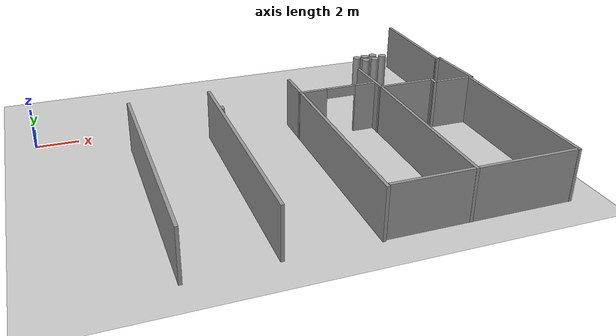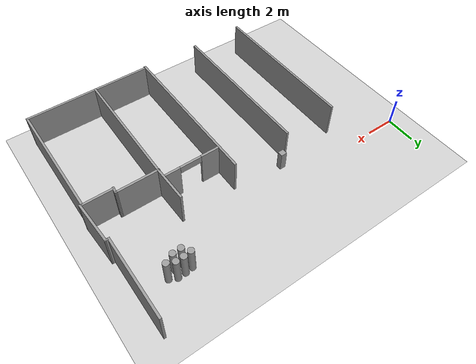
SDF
<sdf version="1.6">
 <world name="default">
  <model name="ground_plane">
   <static>1</static>
   <link name="link">
    <collision name="collision">
     <geometry><plane><normal>0 0 1</normal><size>100 100</size></plane></geometry>
     <surface>
      <contact><collide_bitmask>65535</collide_bitmask></contact>
      <friction><ode><mu>100</mu><mu2>50</mu2></ode></friction>
     </surface>
    </collision>
    <visual name="visual">
     <cast_shadows>0</cast_shadows>
     <geometry><plane><normal>0 0 1</normal><size>100 100</size></plane></geometry>
     <material>
      <script><uri>file://media/materials/scripts/gazebo.material</uri><name>Gazebo/Grey</name></script>
     </material>
    </visual>
   </link>
  </model>
  <model name="six_floor">
   <link name="Wall_100">
    <pose>14.7874 -4.51634 0 0 0 -1.5457</pose>
    <visual name="Wall_100_Visual">
     <pose>0 0 1.25 0 -0 0</pose>
     <geometry><box><size>2.5526 0.15 2.5</size></box></geometry>
     <material>
      <script><uri>file://media/materials/scripts/gazebo.material</uri><name>Gazebo/Grey</name></script>
      <ambient>1 1 1 1</ambient>
     </material>
     <meta><layer>0</layer></meta>
    </visual>
    <collision name="Wall_100_Collision">
     <pose>0 0 1.25 0 -0 0</pose>
     <geometry><box><size>2.5526 0.15 2.5</size></box></geometry>
     <surface>
      <friction>
       <ode><mu>1</mu><mu2>1</mu2><fdir1>0 0 0</fdir1><slip1>0</slip1><slip2>0</slip2></ode>
       <torsional>
        <coefficient>1</coefficient>
        <patch_radius>0</patch_radius>
        <surface_radius>0</surface_radius>
        <use_patch_radius>1</use_patch_radius>
        <ode><slip>0</slip></ode>
       </torsional>
      </friction>
      <bounce><restitution_coefficient>0</restitution_coefficient><threshold>1e+06</threshold></bounce>
      <contact>
       <collide_without_contact>0</collide_without_contact>
       <collide_without_contact_bitmask>1</collide_without_contact_bitmask>
       <collide_bitmask>1</collide_bitmask>
       <ode>
        <soft_cfm>0</soft_cfm>
        <soft_erp>0.2</soft_erp>
        <kp>1e+13</kp>
        <kd>1</kd>
        <max_vel>0.01</max_vel>
        <min_depth>0</min_depth>
       </ode>
       <bullet>
        <split_impulse>1</split_impulse>
        <split_impulse_penetration_threshold>-0.01</split_impulse_penetration_threshold>
        <soft_cfm>0</soft_cfm>
        <soft_erp>0.2</soft_erp>
        <kp>1e+13</kp>
        <kd>1</kd>
       </bullet>
      </contact>
     </surface>
    </collision>
   </link>
   <link name="Wall_101">
    <pose>16.2119 -5.71764 0 0 -0 0</pose>
    <visual name="Wall_101_Visual">
     <pose>0 0 1.25 0 -0 0</pose>
     <geometry><box><size>3 0.15 2.5</size></box></geometry>
     <material>
      <script><uri>file://media/materials/scripts/gazebo.material</uri><name>Gazebo/Grey</name></script>
      <ambient>1 1 1 1</ambient>
     </material>
     <meta><layer>0</layer></meta>
    </visual>
    <collision name="Wall_101_Collision">
     <pose>0 0 1.25 0 -0 0</pose>
     <geometry><box><size>3 0.15 2.5</size></box></geometry>
     <surface>
      <friction>
       <ode><mu>1</mu><mu2>1</mu2><fdir1>0 0 0</fdir1><slip1>0</slip1><slip2>0</slip2></ode>
       <torsional>
        <coefficient>1</coefficient>
        <patch_radius>0</patch_radius>
        <surface_radius>0</surface_radius>
        <use_patch_radius>1</use_patch_radius>
        <ode><slip>0</slip></ode>
       </torsional>
      </friction>
      <bounce><restitution_coefficient>0</restitution_coefficient><threshold>1e+06</threshold></bounce>
      <contact>
       <collide_without_contact>0</collide_without_contact>
       <collide_without_contact_bitmask>1</collide_without_contact_bitmask>
       <collide_bitmask>1</collide_bitmask>
       <ode>
        <soft_cfm>0</soft_cfm>
        <soft_erp>0.2</soft_erp>
        <kp>1e+13</kp>
        <kd>1</kd>
        <max_vel>0.01</max_vel>
        <min_depth>0</min_depth>
       </ode>
       <bullet>
        <split_impulse>1</split_impulse>
        <split_impulse_penetration_threshold>-0.01</split_impulse_penetration_threshold>
        <soft_cfm>0</soft_cfm>
        <soft_erp>0.2</soft_erp>
        <kp>1e+13</kp>
        <kd>1</kd>
       </bullet>
      </contact>
     </surface>
    </collision>
   </link>
   <link name="Wall_102">
    <pose>17.6215 -5.89128 0 0 0 -1.65909</pose>
    <visual name="Wall_102_Visual">
     <pose>0 0 1.25 0 -0 0</pose>
     <geometry><box><size>0.498641 0.15 2.5</size></box></geometry>
     <material>
      <script><uri>file://media/materials/scripts/gazebo.material</uri><name>Gazebo/Grey</name></script>
      <ambient>1 1 1 1</ambient>
     </material>
     <meta><layer>0</layer></meta>
    </visual>
    <collision name="Wall_102_Collision">
     <pose>0 0 1.25 0 -0 0</pose>
     <geometry><box><size>0.498641 0.15 2.5</size></box></geometry>
     <surface>
      <friction>
       <ode><mu>1</mu><mu2>1</mu2><fdir1>0 0 0</fdir1><slip1>0</slip1><slip2>0</slip2></ode>
       <torsional>
        <coefficient>1</coefficient>
        <patch_radius>0</patch_radius>
        <surface_radius>0</surface_radius>
        <use_patch_radius>1</use_patch_radius>
        <ode><slip>0</slip></ode>
       </torsional>
      </friction>
      <bounce><restitution_coefficient>0</restitution_coefficient><threshold>1e+06</threshold></bounce>
      <contact>
       <collide_without_contact>0</collide_without_contact>
       <collide_without_contact_bitmask>1</collide_without_contact_bitmask>
       <collide_bitmask>1</collide_bitmask>
       <ode>
        <soft_cfm>0</soft_cfm>
        <soft_erp>0.2</soft_erp>
        <kp>1e+13</kp>
        <kd>1</kd>
        <max_vel>0.01</max_vel>
        <min_depth>0</min_depth>
       </ode>
       <bullet>
        <split_impulse>1</split_impulse>
        <split_impulse_penetration_threshold>-0.01</split_impulse_penetration_threshold>
        <soft_cfm>0</soft_cfm>
        <soft_erp>0.2</soft_erp>
        <kp>1e+13</kp>
        <kd>1</kd>
       </bullet>
      </contact>
     </surface>
    </collision>
   </link>
   <link name="Wall_105">
    <pose>18.6561 -6.03426 0 0 -0 0</pose>
    <visual name="Wall_105_Visual">
     <pose>0 0 1.25 0 -0 0</pose>
     <geometry><box><size>2.25 0.15 2.5</size></box></geometry>
     <material>
      <script><uri>file://media/materials/scripts/gazebo.material</uri><name>Gazebo/Grey</name></script>
      <ambient>1 1 1 1</ambient>
     </material>
     <meta><layer>0</layer></meta>
    </visual>
    <collision name="Wall_105_Collision">
     <pose>0 0 1.25 0 -0 0</pose>
     <geometry><box><size>2.25 0.15 2.5</size></box></geometry>
     <surface>
      <friction>
       <ode><mu>1</mu><mu2>1</mu2><fdir1>0 0 0</fdir1><slip1>0</slip1><slip2>0</slip2></ode>
       <torsional>
        <coefficient>1</coefficient>
        <patch_radius>0</patch_radius>
        <surface_radius>0</surface_radius>
        <use_patch_radius>1</use_patch_radius>
        <ode><slip>0</slip></ode>
       </torsional>
      </friction>
      <bounce><restitution_coefficient>0</restitution_coefficient><threshold>1e+06</threshold></bounce>
      <contact>
       <collide_without_contact>0</collide_without_contact>
       <collide_without_contact_bitmask>1</collide_without_contact_bitmask>
       <collide_bitmask>1</collide_bitmask>
       <ode>
        <soft_cfm>0</soft_cfm>
        <soft_erp>0.2</soft_erp>
        <kp>1e+13</kp>
        <kd>1</kd>
        <max_vel>0.01</max_vel>
        <min_depth>0</min_depth>
       </ode>
       <bullet>
        <split_impulse>1</split_impulse>
        <split_impulse_penetration_threshold>-0.01</split_impulse_penetration_threshold>
        <soft_cfm>0</soft_cfm>
        <soft_erp>0.2</soft_erp>
        <kp>1e+13</kp>
        <kd>1</kd>
       </bullet>
      </contact>
     </surface>
    </collision>
   </link>
   <link name="Wall_107">
    <pose>19.6274 -4.62914 0 0 -0 1.62675</pose>
    <visual name="Wall_107_Visual">
     <pose>0 0 1.25 0 -0 0</pose>
     <geometry><box><size>2.96463 0.15 2.5</size></box></geometry>
     <material>
      <script><uri>file://media/materials/scripts/gazebo.material</uri><name>Gazebo/Grey</name></script>
      <ambient>1 1 1 1</ambient>
     </material>
     <meta><layer>0</layer></meta>
    </visual>
    <collision name="Wall_107_Collision">
     <pose>0 0 1.25 0 -0 0</pose>
     <geometry><box><size>2.96463 0.15 2.5</size></box></geometry>
     <surface>
      <friction>
       <ode><mu>1</mu><mu2>1</mu2><fdir1>0 0 0</fdir1><slip1>0</slip1><slip2>0</slip2></ode>
       <torsional>
        <coefficient>1</coefficient>
        <patch_radius>0</patch_radius>
        <surface_radius>0</surface_radius>
        <use_patch_radius>1</use_patch_radius>
        <ode><slip>0</slip></ode>
       </torsional>
      </friction>
      <bounce><restitution_coefficient>0</restitution_coefficient><threshold>1e+06</threshold></bounce>
      <contact>
       <collide_without_contact>0</collide_without_contact>
       <collide_without_contact_bitmask>1</collide_without_contact_bitmask>
       <collide_bitmask>1</collide_bitmask>
       <ode>
        <soft_cfm>0</soft_cfm>
        <soft_erp>0.2</soft_erp>
        <kp>1e+13</kp>
        <kd>1</kd>
        <max_vel>0.01</max_vel>
        <min_depth>0</min_depth>
       </ode>
       <bullet>
        <split_impulse>1</split_impulse>
        <split_impulse_penetration_threshold>-0.01</split_impulse_penetration_threshold>
        <soft_cfm>0</soft_cfm>
        <soft_erp>0.2</soft_erp>
        <kp>1e+13</kp>
        <kd>1</kd>
       </bullet>
      </contact>
     </surface>
    </collision>
   </link>
   <link name="Wall_120">
    <pose>19.3579 -0.52297 0 0 0 -1.5708</pose>
    <visual name="Wall_120_Visual">
     <pose>0 0 1.25 0 -0 0</pose>
     <geometry><box><size>5.5 0.15 2.5</size></box></geometry>
     <material>
      <script><uri>file://media/materials/scripts/gazebo.material</uri><name>Gazebo/Grey</name></script>
      <ambient>1 1 1 1</ambient>
     </material>
     <meta><layer>0</layer></meta>
    </visual>
    <collision name="Wall_120_Collision">
     <pose>0 0 1.25 0 -0 0</pose>
     <geometry><box><size>5.5 0.15 2.5</size></box></geometry>
     <surface>
      <friction>
       <ode><mu>1</mu><mu2>1</mu2><fdir1>0 0 0</fdir1><slip1>0</slip1><slip2>0</slip2></ode>
       <torsional>
        <coefficient>1</coefficient>
        <patch_radius>0</patch_radius>
        <surface_radius>0</surface_radius>
        <use_patch_radius>1</use_patch_radius>
        <ode><slip>0</slip></ode>
       </torsional>
      </friction>
      <bounce><restitution_coefficient>0</restitution_coefficient><threshold>1e+06</threshold></bounce>
      <contact>
       <collide_without_contact>0</collide_without_contact>
       <collide_without_contact_bitmask>1</collide_without_contact_bitmask>
       <collide_bitmask>1</collide_bitmask>
       <ode>
        <soft_cfm>0</soft_cfm>
        <soft_erp>0.2</soft_erp>
        <kp>1e+13</kp>
        <kd>1</kd>
        <max_vel>0.01</max_vel>
        <min_depth>0</min_depth>
       </ode>
       <bullet>
        <split_impulse>1</split_impulse>
        <split_impulse_penetration_threshold>-0.01</split_impulse_penetration_threshold>
        <soft_cfm>0</soft_cfm>
        <soft_erp>0.2</soft_erp>
        <kp>1e+13</kp>
        <kd>1</kd>
       </bullet>
      </contact>
     </surface>
    </collision>
   </link>
   <link name="Wall_122">
    <pose>6.66142 -8.90846 0 0 0 -1.5708</pose>
    <visual name="Wall_122_Visual">
     <pose>0 0 1.25 0 -0 0</pose>
     <geometry><box><size>10.75 0.15 2.5</size></box></geometry>
     <material>
      <script><uri>file://media/materials/scripts/gazebo.material</uri><name>Gazebo/Grey</name></script>
      <ambient>1 1 1 1</ambient>
     </material>
     <meta><layer>0</layer></meta>
    </visual>
    <collision name="Wall_122_Collision">
     <pose>0 0 1.25 0 -0 0</pose>
     <geometry><box><size>10.75 0.15 2.5</size></box></geometry>
     <surface>
      <friction>
       <ode><mu>1</mu><mu2>1</mu2><fdir1>0 0 0</fdir1><slip1>0</slip1><slip2>0</slip2></ode>
       <torsional>
        <coefficient>1</coefficient>
        <patch_radius>0</patch_radius>
        <surface_radius>0</surface_radius>
        <use_patch_radius>1</use_patch_radius>
        <ode><slip>0</slip></ode>
       </torsional>
      </friction>
      <bounce><restitution_coefficient>0</restitution_coefficient><threshold>1e+06</threshold></bounce>
      <contact>
       <collide_without_contact>0</collide_without_contact>
       <collide_without_contact_bitmask>1</collide_without_contact_bitmask>
       <collide_bitmask>1</collide_bitmask>
       <ode>
        <soft_cfm>0</soft_cfm>
        <soft_erp>0.2</soft_erp>
        <kp>1e+13</kp>
        <kd>1</kd>
        <max_vel>0.01</max_vel>
        <min_depth>0</min_depth>
       </ode>
       <bullet>
        <split_impulse>1</split_impulse>
        <split_impulse_penetration_threshold>-0.01</split_impulse_penetration_threshold>
        <soft_cfm>0</soft_cfm>
        <soft_erp>0.2</soft_erp>
        <kp>1e+13</kp>
        <kd>1</kd>
       </bullet>
      </contact>
     </surface>
    </collision>
   </link>
   <link name="Wall_126">
    <pose>2.77713 -9.00436 0 0 0 -1.5708</pose>
    <visual name="Wall_126_Visual">
     <pose>0 0 1.25 0 -0 0</pose>
     <geometry><box><size>10.75 0.15 2.5</size></box></geometry>
     <material>
      <script><uri>file://media/materials/scripts/gazebo.material</uri><name>Gazebo/Grey</name></script>
      <ambient>1 1 1 1</ambient>
     </material>
     <meta><layer>0</layer></meta>
    </visual>
    <collision name="Wall_126_Collision">
     <pose>0 0 1.25 0 -0 0</pose>
     <geometry><box><size>10.75 0.15 2.5</size></box></geometry>
     <surface>
      <friction>
       <ode><mu>1</mu><mu2>1</mu2><fdir1>0 0 0</fdir1><slip1>0</slip1><slip2>0</slip2></ode>
       <torsional>
        <coefficient>1</coefficient>
        <patch_radius>0</patch_radius>
        <surface_radius>0</surface_radius>
        <use_patch_radius>1</use_patch_radius>
        <ode><slip>0</slip></ode>
       </torsional>
      </friction>
      <bounce><restitution_coefficient>0</restitution_coefficient><threshold>1e+06</threshold></bounce>
      <contact>
       <collide_without_contact>0</collide_without_contact>
       <collide_without_contact_bitmask>1</collide_without_contact_bitmask>
       <collide_bitmask>1</collide_bitmask>
       <ode>
        <soft_cfm>0</soft_cfm>
        <soft_erp>0.2</soft_erp>
        <kp>1e+13</kp>
        <kd>1</kd>
        <max_vel>0.01</max_vel>
        <min_depth>0</min_depth>
       </ode>
       <bullet>
        <split_impulse>1</split_impulse>
        <split_impulse_penetration_threshold>-0.01</split_impulse_penetration_threshold>
        <soft_cfm>0</soft_cfm>
        <soft_erp>0.2</soft_erp>
        <kp>1e+13</kp>
        <kd>1</kd>
       </bullet>
      </contact>
     </surface>
    </collision>
   </link>
   <link name="Wall_141">
    <pose>19.4533 -3.211 0 0 0 -0.135701</pose>
    <visual name="Wall_141_Visual">
     <pose>0 0 1.25 0 -0 0</pose>
     <geometry><box><size>0.342635 0.15 2.5</size></box></geometry>
     <material>
      <script><uri>file://media/materials/scripts/gazebo.material</uri><name>Gazebo/Grey</name></script>
      <ambient>1 1 1 1</ambient>
     </material>
     <meta><layer>0</layer></meta>
    </visual>
    <collision name="Wall_141_Collision">
     <pose>0 0 1.25 0 -0 0</pose>
     <geometry><box><size>0.342635 0.15 2.5</size></box></geometry>
     <surface>
      <friction>
       <ode><mu>1</mu><mu2>1</mu2><fdir1>0 0 0</fdir1><slip1>0</slip1><slip2>0</slip2></ode>
       <torsional>
        <coefficient>1</coefficient>
        <patch_radius>0</patch_radius>
        <surface_radius>0</surface_radius>
        <use_patch_radius>1</use_patch_radius>
        <ode><slip>0</slip></ode>
       </torsional>
      </friction>
      <bounce><restitution_coefficient>0</restitution_coefficient><threshold>1e+06</threshold></bounce>
      <contact>
       <collide_without_contact>0</collide_without_contact>
       <collide_without_contact_bitmask>1</collide_without_contact_bitmask>
       <collide_bitmask>1</collide_bitmask>
       <ode>
        <soft_cfm>0</soft_cfm>
        <soft_erp>0.2</soft_erp>
        <kp>1e+13</kp>
        <kd>1</kd>
        <max_vel>0.01</max_vel>
        <min_depth>0</min_depth>
       </ode>
       <bullet>
        <split_impulse>1</split_impulse>
        <split_impulse_penetration_threshold>-0.01</split_impulse_penetration_threshold>
        <soft_cfm>0</soft_cfm>
        <soft_erp>0.2</soft_erp>
        <kp>1e+13</kp>
        <kd>1</kd>
       </bullet>
      </contact>
     </surface>
    </collision>
   </link>
   <link name="Wall_159">
    <pose>10.8267 -8.88193 0 0 0 -1.5708</pose>
    <visual name="Wall_159_Visual">
     <pose>0 0 1.25 0 -0 0</pose>
     <geometry><box><size>11 0.15 2.5</size></box></geometry>
     <material>
      <script><uri>file://media/materials/scripts/gazebo.material</uri><name>Gazebo/Grey</name></script>
      <ambient>1 1 1 1</ambient>
     </material>
     <meta><layer>0</layer></meta>
    </visual>
    <collision name="Wall_159_Collision">
     <pose>0 0 1.25 0 -0 0</pose>
     <geometry><box><size>11 0.15 2.5</size></box></geometry>
     <surface>
      <friction>
       <ode><mu>1</mu><mu2>1</mu2><fdir1>0 0 0</fdir1><slip1>0</slip1><slip2>0</slip2></ode>
       <torsional>
        <coefficient>1</coefficient>
        <patch_radius>0</patch_radius>
        <surface_radius>0</surface_radius>
        <use_patch_radius>1</use_patch_radius>
        <ode><slip>0</slip></ode>
       </torsional>
      </friction>
      <bounce><restitution_coefficient>0</restitution_coefficient><threshold>1e+06</threshold></bounce>
      <contact>
       <collide_without_contact>0</collide_without_contact>
       <collide_without_contact_bitmask>1</collide_without_contact_bitmask>
       <collide_bitmask>1</collide_bitmask>
       <ode>
        <soft_cfm>0</soft_cfm>
        <soft_erp>0.2</soft_erp>
        <kp>1e+13</kp>
        <kd>1</kd>
        <max_vel>0.01</max_vel>
        <min_depth>0</min_depth>
       </ode>
       <bullet>
        <split_impulse>1</split_impulse>
        <split_impulse_penetration_threshold>-0.01</split_impulse_penetration_threshold>
        <soft_cfm>0</soft_cfm>
        <soft_erp>0.2</soft_erp>
        <kp>1e+13</kp>
        <kd>1</kd>
       </bullet>
      </contact>
     </surface>
    </collision>
   </link>
   <link name="Wall_161">
    <pose>12.7394 -5.12095 0 0 -0 0</pose>
    <visual name="Wall_161_Visual_0">
     <pose>-1.28547 0 1.25 0 -0 0</pose>
     <geometry><box><size>1.42906 0.15 2.5</size></box></geometry>
     <material>
      <script><uri>file://media/materials/scripts/gazebo.material</uri><name>Gazebo/Grey</name></script>
      <ambient>1 1 1 1</ambient>
     </material>
     <meta><layer>0</layer></meta>
    </visual>
    <visual name="Wall_161_Visual_1">
     <pose>1.46453 0 1.25 0 -0 0</pose>
     <geometry><box><size>1.07094 0.15 2.5</size></box></geometry>
     <material>
      <script><uri>file://media/materials/scripts/gazebo.material</uri><name>Gazebo/Grey</name></script>
      <ambient>1 1 1 1</ambient>
     </material>
     <meta><layer>0</layer></meta>
    </visual>
    <visual name="Wall_161_Visual_2">
     <pose>0.179062 0 2.25 0 -0 0</pose>
     <geometry><box><size>1.5 0.15 0.5</size></box></geometry>
     <material>
      <script><uri>file://media/materials/scripts/gazebo.material</uri><name>Gazebo/Grey</name></script>
      <ambient>1 1 1 1</ambient>
     </material>
     <meta><layer>0</layer></meta>
    </visual>
    <collision name="Wall_161_Collision_0">
     <pose>-1.28547 0 1.25 0 -0 0</pose>
     <geometry><box><size>1.42906 0.15 2.5</size></box></geometry>
     <surface>
      <friction>
       <ode><mu>1</mu><mu2>1</mu2><fdir1>0 0 0</fdir1><slip1>0</slip1><slip2>0</slip2></ode>
       <torsional>
        <coefficient>1</coefficient>
        <patch_radius>0</patch_radius>
        <surface_radius>0</surface_radius>
        <use_patch_radius>1</use_patch_radius>
        <ode><slip>0</slip></ode>
       </torsional>
      </friction>
      <bounce><restitution_coefficient>0</restitution_coefficient><threshold>1e+06</threshold></bounce>
      <contact>
       <collide_without_contact>0</collide_without_contact>
       <collide_without_contact_bitmask>1</collide_without_contact_bitmask>
       <collide_bitmask>1</collide_bitmask>
       <ode>
        <soft_cfm>0</soft_cfm>
        <soft_erp>0.2</soft_erp>
        <kp>1e+13</kp>
        <kd>1</kd>
        <max_vel>0.01</max_vel>
        <min_depth>0</min_depth>
       </ode>
       <bullet>
        <split_impulse>1</split_impulse>
        <split_impulse_penetration_threshold>-0.01</split_impulse_penetration_threshold>
        <soft_cfm>0</soft_cfm>
        <soft_erp>0.2</soft_erp>
        <kp>1e+13</kp>
        <kd>1</kd>
       </bullet>
      </contact>
     </surface>
    </collision>
    <collision name="Wall_161_Collision_1">
     <pose>1.46453 0 1.25 0 -0 0</pose>
     <geometry><box><size>1.07094 0.15 2.5</size></box></geometry>
     <surface>
      <friction>
       <ode><mu>1</mu><mu2>1</mu2><fdir1>0 0 0</fdir1><slip1>0</slip1><slip2>0</slip2></ode>
       <torsional>
        <coefficient>1</coefficient>
        <patch_radius>0</patch_radius>
        <surface_radius>0</surface_radius>
        <use_patch_radius>1</use_patch_radius>
        <ode><slip>0</slip></ode>
       </torsional>
      </friction>
      <bounce><restitution_coefficient>0</restitution_coefficient><threshold>1e+06</threshold></bounce>
      <contact>
       <collide_without_contact>0</collide_without_contact>
       <collide_without_contact_bitmask>1</collide_without_contact_bitmask>
       <collide_bitmask>1</collide_bitmask>
       <ode>
        <soft_cfm>0</soft_cfm>
        <soft_erp>0.2</soft_erp>
        <kp>1e+13</kp>
        <kd>1</kd>
        <max_vel>0.01</max_vel>
        <min_depth>0</min_depth>
       </ode>
       <bullet>
        <split_impulse>1</split_impulse>
        <split_impulse_penetration_threshold>-0.01</split_impulse_penetration_threshold>
        <soft_cfm>0</soft_cfm>
        <soft_erp>0.2</soft_erp>
        <kp>1e+13</kp>
        <kd>1</kd>
       </bullet>
      </contact>
     </surface>
    </collision>
    <collision name="Wall_161_Collision_2">
     <pose>0.179062 0 2.25 0 -0 0</pose>
     <geometry><box><size>1.5 0.15 0.5</size></box></geometry>
     <surface>
      <friction>
       <ode><mu>1</mu><mu2>1</mu2><fdir1>0 0 0</fdir1><slip1>0</slip1><slip2>0</slip2></ode>
       <torsional>
        <coefficient>1</coefficient>
        <patch_radius>0</patch_radius>
        <surface_radius>0</surface_radius>
        <use_patch_radius>1</use_patch_radius>
        <ode><slip>0</slip></ode>
       </torsional>
      </friction>
      <bounce><restitution_coefficient>0</restitution_coefficient><threshold>1e+06</threshold></bounce>
      <contact>
       <collide_without_contact>0</collide_without_contact>
       <collide_without_contact_bitmask>1</collide_without_contact_bitmask>
       <collide_bitmask>1</collide_bitmask>
       <ode>
        <soft_cfm>0</soft_cfm>
        <soft_erp>0.2</soft_erp>
        <kp>1e+13</kp>
        <kd>1</kd>
        <max_vel>0.01</max_vel>
        <min_depth>0</min_depth>
       </ode>
       <bullet>
        <split_impulse>1</split_impulse>
        <split_impulse_penetration_threshold>-0.01</split_impulse_penetration_threshold>
        <soft_cfm>0</soft_cfm>
        <soft_erp>0.2</soft_erp>
        <kp>1e+13</kp>
        <kd>1</kd>
       </bullet>
      </contact>
     </surface>
    </collision>
   </link>
   <link name="Wall_181">
    <pose>15.288 -14.2181 0 0 -0 0</pose>
    <visual name="Wall_181_Visual">
     <pose>0 0 1.25 0 -0 0</pose>
     <geometry><box><size>8.75 0.15 2.5</size></box></geometry>
     <material>
      <script><uri>file://media/materials/scripts/gazebo.material</uri><name>Gazebo/Grey</name></script>
      <ambient>1 1 1 1</ambient>
     </material>
     <meta><layer>0</layer></meta>
    </visual>
    <collision name="Wall_181_Collision">
     <pose>0 0 1.25 0 -0 0</pose>
     <geometry><box><size>8.75 0.15 2.5</size></box></geometry>
     <surface>
      <friction>
       <ode><mu>1</mu><mu2>1</mu2><fdir1>0 0 0</fdir1><slip1>0</slip1><slip2>0</slip2></ode>
       <torsional>
        <coefficient>1</coefficient>
        <patch_radius>0</patch_radius>
        <surface_radius>0</surface_radius>
        <use_patch_radius>1</use_patch_radius>
        <ode><slip>0</slip></ode>
       </torsional>
      </friction>
      <bounce><restitution_coefficient>0</restitution_coefficient><threshold>1e+06</threshold></bounce>
      <contact>
       <collide_without_contact>0</collide_without_contact>
       <collide_without_contact_bitmask>1</collide_without_contact_bitmask>
       <collide_bitmask>1</collide_bitmask>
       <ode>
        <soft_cfm>0</soft_cfm>
        <soft_erp>0.2</soft_erp>
        <kp>1e+13</kp>
        <kd>1</kd>
        <max_vel>0.01</max_vel>
        <min_depth>0</min_depth>
       </ode>
       <bullet>
        <split_impulse>1</split_impulse>
        <split_impulse_penetration_threshold>-0.01</split_impulse_penetration_threshold>
        <soft_cfm>0</soft_cfm>
        <soft_erp>0.2</soft_erp>
        <kp>1e+13</kp>
        <kd>1</kd>
       </bullet>
      </contact>
     </surface>
    </collision>
   </link>
   <link name="Wall_183">
    <pose>19.5869 -10.1801 0 0 0 -1.5708</pose>
    <visual name="Wall_183_Visual">
     <pose>0 0 1.25 0 -0 0</pose>
     <geometry><box><size>8.25 0.15 2.5</size></box></geometry>
     <material>
      <script><uri>file://media/materials/scripts/gazebo.material</uri><name>Gazebo/Grey</name></script>
      <ambient>1 1 1 1</ambient>
     </material>
     <meta><layer>0</layer></meta>
    </visual>
    <collision name="Wall_183_Collision">
     <pose>0 0 1.25 0 -0 0</pose>
     <geometry><box><size>8.25 0.15 2.5</size></box></geometry>
     <surface>
      <friction>
       <ode><mu>1</mu><mu2>1</mu2><fdir1>0 0 0</fdir1><slip1>0</slip1><slip2>0</slip2></ode>
       <torsional>
        <coefficient>1</coefficient>
        <patch_radius>0</patch_radius>
        <surface_radius>0</surface_radius>
        <use_patch_radius>1</use_patch_radius>
        <ode><slip>0</slip></ode>
       </torsional>
      </friction>
      <bounce><restitution_coefficient>0</restitution_coefficient><threshold>1e+06</threshold></bounce>
      <contact>
       <collide_without_contact>0</collide_without_contact>
       <collide_without_contact_bitmask>1</collide_without_contact_bitmask>
       <collide_bitmask>1</collide_bitmask>
       <ode>
        <soft_cfm>0</soft_cfm>
        <soft_erp>0.2</soft_erp>
        <kp>1e+13</kp>
        <kd>1</kd>
        <max_vel>0.01</max_vel>
        <min_depth>0</min_depth>
       </ode>
       <bullet>
        <split_impulse>1</split_impulse>
        <split_impulse_penetration_threshold>-0.01</split_impulse_penetration_threshold>
        <soft_cfm>0</soft_cfm>
        <soft_erp>0.2</soft_erp>
        <kp>1e+13</kp>
        <kd>1</kd>
       </bullet>
      </contact>
     </surface>
    </collision>
   </link>
   <link name="Wall_185">
    <pose>14.7869 -9.97164 0 0 0 -1.57801</pose>
    <visual name="Wall_185_Visual">
     <pose>0 0 1.25 0 -0 0</pose>
     <geometry><box><size>8.658 0.15 2.5</size></box></geometry>
     <material>
      <script><uri>file://media/materials/scripts/gazebo.material</uri><name>Gazebo/Grey</name></script>
      <ambient>1 1 1 1</ambient>
     </material>
     <meta><layer>0</layer></meta>
    </visual>
    <collision name="Wall_185_Collision">
     <pose>0 0 1.25 0 -0 0</pose>
     <geometry><box><size>8.658 0.15 2.5</size></box></geometry>
     <surface>
      <friction>
       <ode><mu>1</mu><mu2>1</mu2><fdir1>0 0 0</fdir1><slip1>0</slip1><slip2>0</slip2></ode>
       <torsional>
        <coefficient>1</coefficient>
        <patch_radius>0</patch_radius>
        <surface_radius>0</surface_radius>
        <use_patch_radius>1</use_patch_radius>
        <ode><slip>0</slip></ode>
       </torsional>
      </friction>
      <bounce><restitution_coefficient>0</restitution_coefficient><threshold>1e+06</threshold></bounce>
      <contact>
       <collide_without_contact>0</collide_without_contact>
       <collide_without_contact_bitmask>1</collide_without_contact_bitmask>
       <collide_bitmask>1</collide_bitmask>
       <ode>
        <soft_cfm>0</soft_cfm>
        <soft_erp>0.2</soft_erp>
        <kp>1e+13</kp>
        <kd>1</kd>
        <max_vel>0.01</max_vel>
        <min_depth>0</min_depth>
       </ode>
       <bullet>
        <split_impulse>1</split_impulse>
        <split_impulse_penetration_threshold>-0.01</split_impulse_penetration_threshold>
        <soft_cfm>0</soft_cfm>
        <soft_erp>0.2</soft_erp>
        <kp>1e+13</kp>
        <kd>1</kd>
       </bullet>
      </contact>
     </surface>
    </collision>
   </link>
   <link name="link_3">
    <inertial>
     <mass>0.268533</mass>
     <inertia>
      <ixx>0.0705255</ixx>
      <ixy>0</ixy>
      <ixz>0</ixz>
      <iyy>0.0713499</iyy>
      <iyz>0</iyz>
      <izz>0.00697062</izz>
     </inertia>
    </inertial>
    <pose>7.26766 -3.16877 0.5 0 -0 0</pose>
    <visual name="visual">
     <geometry><box><size>0.417333 0.370581 1.73616</size></box></geometry>
     <material>
      <lighting>1</lighting>
      <script><uri>file://media/materials/scripts/gazebo.material</uri><name>Gazebo/Grey</name></script>
     </material>
    </visual>
    <collision name="collision">
     <geometry><box><size>0.417333 0.370581 1.73616</size></box></geometry>
     <surface>
      <friction>
       <ode><mu>1</mu><mu2>1</mu2><fdir1>0 0 0</fdir1><slip1>0</slip1><slip2>0</slip2></ode>
       <torsional>
        <coefficient>1</coefficient>
        <patch_radius>0</patch_radius>
        <surface_radius>0</surface_radius>
        <use_patch_radius>1</use_patch_radius>
        <ode><slip>0</slip></ode>
       </torsional>
      </friction>
      <bounce><restitution_coefficient>0</restitution_coefficient><threshold>1e+06</threshold></bounce>
      <contact>
       <collide_without_contact>0</collide_without_contact>
       <collide_without_contact_bitmask>1</collide_without_contact_bitmask>
       <collide_bitmask>1</collide_bitmask>
       <ode>
        <soft_cfm>0</soft_cfm>
        <soft_erp>0.2</soft_erp>
        <kp>1e+13</kp>
        <kd>1</kd>
        <max_vel>0.01</max_vel>
        <min_depth>0</min_depth>
       </ode>
       <bullet>
        <split_impulse>1</split_impulse>
        <split_impulse_penetration_threshold>-0.01</split_impulse_penetration_threshold>
        <soft_cfm>0</soft_cfm>
        <soft_erp>0.2</soft_erp>
        <kp>1e+13</kp>
        <kd>1</kd>
       </bullet>
      </contact>
     </surface>
    </collision>
   </link>
   <link name="link_4">
    <inertial>
     <mass>0.501747</mass>
     <inertia>
      <ixx>0.342243</ixx>
      <ixy>0</ixy>
      <ixz>0</ixz>
      <iyy>0.342243</iyy>
      <iyz>0</iyz>
      <izz>0.011085</izz>
     </inertia>
    </inertial>
    <pose>16.0082 -0.345901 0.5 0 -0 0</pose>
    <visual name="visual">
     <geometry><cylinder><radius>0.210203</radius><length>2.83772</length></cylinder></geometry>
     <material>
      <lighting>1</lighting>
      <script><uri>file://media/materials/scripts/gazebo.material</uri><name>Gazebo/Grey</name></script>
     </material>
    </visual>
    <collision name="collision">
     <geometry><cylinder><radius>0.210203</radius><length>2.83772</length></cylinder></geometry>
     <surface>
      <friction>
       <ode><mu>1</mu><mu2>1</mu2><fdir1>0 0 0</fdir1><slip1>0</slip1><slip2>0</slip2></ode>
       <torsional>
        <coefficient>1</coefficient>
        <patch_radius>0</patch_radius>
        <surface_radius>0</surface_radius>
        <use_patch_radius>1</use_patch_radius>
        <ode><slip>0</slip></ode>
       </torsional>
      </friction>
      <bounce><restitution_coefficient>0</restitution_coefficient><threshold>1e+06</threshold></bounce>
      <contact>
       <collide_without_contact>0</collide_without_contact>
       <collide_without_contact_bitmask>1</collide_without_contact_bitmask>
       <collide_bitmask>1</collide_bitmask>
       <ode>
        <soft_cfm>0</soft_cfm>
        <soft_erp>0.2</soft_erp>
        <kp>1e+13</kp>
        <kd>1</kd>
        <max_vel>0.01</max_vel>
        <min_depth>0</min_depth>
       </ode>
       <bullet>
        <split_impulse>1</split_impulse>
        <split_impulse_penetration_threshold>-0.01</split_impulse_penetration_threshold>
        <soft_cfm>0</soft_cfm>
        <soft_erp>0.2</soft_erp>
        <kp>1e+13</kp>
        <kd>1</kd>
       </bullet>
      </contact>
     </surface>
    </collision>
   </link>
   <link name="link_4_clone">
    <inertial>
     <mass>0.501747</mass>
     <inertia>
      <ixx>0.342243</ixx>
      <ixy>0</ixy>
      <ixz>0</ixz>
      <iyy>0.342243</iyy>
      <iyz>0</iyz>
      <izz>0.011085</izz>
     </inertia>
    </inertial>
    <pose>16.5056 -0.28092 0.5 0 -0 0</pose>
    <visual name="visual">
     <geometry><cylinder><radius>0.210203</radius><length>2.83772</length></cylinder></geometry>
     <material>
      <lighting>1</lighting>
      <script><uri>file://media/materials/scripts/gazebo.material</uri><name>Gazebo/Grey</name></script>
      <shader type="pixel"/>
     </material>
    </visual>
    <collision name="collision">
     <geometry><cylinder><radius>0.210203</radius><length>2.83772</length></cylinder></geometry>
     <surface>
      <friction>
       <ode><mu>1</mu><mu2>1</mu2><fdir1>0 0 0</fdir1><slip1>0</slip1><slip2>0</slip2></ode>
       <torsional>
        <coefficient>1</coefficient>
        <patch_radius>0</patch_radius>
        <surface_radius>0</surface_radius>
        <use_patch_radius>1</use_patch_radius>
        <ode><slip>0</slip></ode>
       </torsional>
      </friction>
      <bounce><restitution_coefficient>0</restitution_coefficient><threshold>1e+06</threshold></bounce>
      <contact>
       <collide_without_contact>0</collide_without_contact>
       <collide_without_contact_bitmask>1</collide_without_contact_bitmask>
       <collide_bitmask>1</collide_bitmask>
       <ode>
        <soft_cfm>0</soft_cfm>
        <soft_erp>0.2</soft_erp>
        <kp>1e+13</kp>
        <kd>1</kd>
        <max_vel>0.01</max_vel>
        <min_depth>0</min_depth>
       </ode>
       <bullet>
        <split_impulse>1</split_impulse>
        <split_impulse_penetration_threshold>-0.01</split_impulse_penetration_threshold>
        <soft_cfm>0</soft_cfm>
        <soft_erp>0.2</soft_erp>
        <kp>1e+13</kp>
        <kd>1</kd>
       </bullet>
      </contact>
     </surface>
    </collision>
   </link>
   <link name="link_4_clone_0">
    <inertial>
     <mass>0.501747</mass>
     <inertia>
      <ixx>0.342243</ixx>
      <ixy>0</ixy>
      <ixz>0</ixz>
      <iyy>0.342243</iyy>
      <iyz>0</iyz>
      <izz>0.011085</izz>
     </inertia>
    </inertial>
    <pose>16.3606 -0.796844 0.5 0 -0 0</pose>
    <visual name="visual">
     <geometry><cylinder><radius>0.210203</radius><length>2.83772</length></cylinder></geometry>
     <material>
      <lighting>1</lighting>
      <script><uri>file://media/materials/scripts/gazebo.material</uri><name>Gazebo/Grey</name></script>
      <shader type="pixel"/>
     </material>
    </visual>
    <collision name="collision">
     <geometry><cylinder><radius>0.210203</radius><length>2.83772</length></cylinder></geometry>
     <surface>
      <friction>
       <ode><mu>1</mu><mu2>1</mu2><fdir1>0 0 0</fdir1><slip1>0</slip1><slip2>0</slip2></ode>
       <torsional>
        <coefficient>1</coefficient>
        <patch_radius>0</patch_radius>
        <surface_radius>0</surface_radius>
        <use_patch_radius>1</use_patch_radius>
        <ode><slip>0</slip></ode>
       </torsional>
      </friction>
      <bounce><restitution_coefficient>0</restitution_coefficient><threshold>1e+06</threshold></bounce>
      <contact>
       <collide_without_contact>0</collide_without_contact>
       <collide_without_contact_bitmask>1</collide_without_contact_bitmask>
       <collide_bitmask>1</collide_bitmask>
       <ode>
        <soft_cfm>0</soft_cfm>
        <soft_erp>0.2</soft_erp>
        <kp>1e+13</kp>
        <kd>1</kd>
        <max_vel>0.01</max_vel>
        <min_depth>0</min_depth>
       </ode>
       <bullet>
        <split_impulse>1</split_impulse>
        <split_impulse_penetration_threshold>-0.01</split_impulse_penetration_threshold>
        <soft_cfm>0</soft_cfm>
        <soft_erp>0.2</soft_erp>
        <kp>1e+13</kp>
        <kd>1</kd>
       </bullet>
      </contact>
     </surface>
    </collision>
   </link>
   <link name="link_4_clone_1">
    <inertial>
     <mass>0.501747</mass>
     <inertia>
      <ixx>0.342243</ixx>
      <ixy>0</ixy>
      <ixz>0</ixz>
      <iyy>0.342243</iyy>
      <iyz>0</iyz>
      <izz>0.011085</izz>
     </inertia>
    </inertial>
    <pose>17.0165 -0.261687 0.5 0 -0 0</pose>
    <visual name="visual">
     <geometry><cylinder><radius>0.210203</radius><length>2.83772</length></cylinder></geometry>
     <material>
      <lighting>1</lighting>
      <script><uri>file://media/materials/scripts/gazebo.material</uri><name>Gazebo/Grey</name></script>
      <shader type="pixel"/>
     </material>
    </visual>
    <collision name="collision">
     <geometry><cylinder><radius>0.210203</radius><length>2.83772</length></cylinder></geometry>
     <surface>
      <friction>
       <ode><mu>1</mu><mu2>1</mu2><fdir1>0 0 0</fdir1><slip1>0</slip1><slip2>0</slip2></ode>
       <torsional>
        <coefficient>1</coefficient>
        <patch_radius>0</patch_radius>
        <surface_radius>0</surface_radius>
        <use_patch_radius>1</use_patch_radius>
        <ode><slip>0</slip></ode>
       </torsional>
      </friction>
      <bounce><restitution_coefficient>0</restitution_coefficient><threshold>1e+06</threshold></bounce>
      <contact>
       <collide_without_contact>0</collide_without_contact>
       <collide_without_contact_bitmask>1</collide_without_contact_bitmask>
       <collide_bitmask>1</collide_bitmask>
       <ode>
        <soft_cfm>0</soft_cfm>
        <soft_erp>0.2</soft_erp>
        <kp>1e+13</kp>
        <kd>1</kd>
        <max_vel>0.01</max_vel>
        <min_depth>0</min_depth>
       </ode>
       <bullet>
        <split_impulse>1</split_impulse>
        <split_impulse_penetration_threshold>-0.01</split_impulse_penetration_threshold>
        <soft_cfm>0</soft_cfm>
        <soft_erp>0.2</soft_erp>
        <kp>1e+13</kp>
        <kd>1</kd>
       </bullet>
      </contact>
     </surface>
    </collision>
   </link>
   <link name="link_4_clone_2">
    <inertial>
     <mass>0.501747</mass>
     <inertia>
      <ixx>0.342243</ixx>
      <ixy>0</ixy>
      <ixz>0</ixz>
      <iyy>0.342243</iyy>
      <iyz>0</iyz>
      <izz>0.011085</izz>
     </inertia>
    </inertial>
    <pose>16.9147 -0.776109 0.5 0 -0 0</pose>
    <visual name="visual">
     <geometry><cylinder><radius>0.210203</radius><length>2.83772</length></cylinder></geometry>
     <material>
      <lighting>1</lighting>
      <script><uri>file://media/materials/scripts/gazebo.material</uri><name>Gazebo/Grey</name></script>
      <shader type="pixel"/>
     </material>
    </visual>
    <collision name="collision">
     <geometry><cylinder><radius>0.210203</radius><length>2.83772</length></cylinder></geometry>
     <surface>
      <friction>
       <ode><mu>1</mu><mu2>1</mu2><fdir1>0 0 0</fdir1><slip1>0</slip1><slip2>0</slip2></ode>
       <torsional>
        <coefficient>1</coefficient>
        <patch_radius>0</patch_radius>
        <surface_radius>0</surface_radius>
        <use_patch_radius>1</use_patch_radius>
        <ode><slip>0</slip></ode>
       </torsional>
      </friction>
      <bounce><restitution_coefficient>0</restitution_coefficient><threshold>1e+06</threshold></bounce>
      <contact>
       <collide_without_contact>0</collide_without_contact>
       <collide_without_contact_bitmask>1</collide_without_contact_bitmask>
       <collide_bitmask>1</collide_bitmask>
       <ode>
        <soft_cfm>0</soft_cfm>
        <soft_erp>0.2</soft_erp>
        <kp>1e+13</kp>
        <kd>1</kd>
        <max_vel>0.01</max_vel>
        <min_depth>0</min_depth>
       </ode>
       <bullet>
        <split_impulse>1</split_impulse>
        <split_impulse_penetration_threshold>-0.01</split_impulse_penetration_threshold>
        <soft_cfm>0</soft_cfm>
        <soft_erp>0.2</soft_erp>
        <kp>1e+13</kp>
        <kd>1</kd>
       </bullet>
      </contact>
     </surface>
    </collision>
   </link>
   <link name="link_4_clone_3">
    <inertial>
     <mass>0.501747</mass>
     <inertia>
      <ixx>0.342243</ixx>
      <ixy>0</ixy>
      <ixz>0</ixz>
      <iyy>0.342243</iyy>
      <iyz>0</iyz>
      <izz>0.011085</izz>
     </inertia>
    </inertial>
    <pose>17.5092 -0.487443 0.5 0 -0 0</pose>
    <visual name="visual">
     <geometry><cylinder><radius>0.210203</radius><length>2.83772</length></cylinder></geometry>
     <material>
      <lighting>1</lighting>
      <script><uri>file://media/materials/scripts/gazebo.material</uri><name>Gazebo/Grey</name></script>
      <shader type="pixel"/>
     </material>
    </visual>
    <collision name="collision">
     <geometry><cylinder><radius>0.210203</radius><length>2.83772</length></cylinder></geometry>
     <surface>
      <friction>
       <ode><mu>1</mu><mu2>1</mu2><fdir1>0 0 0</fdir1><slip1>0</slip1><slip2>0</slip2></ode>
       <torsional>
        <coefficient>1</coefficient>
        <patch_radius>0</patch_radius>
        <surface_radius>0</surface_radius>
        <use_patch_radius>1</use_patch_radius>
        <ode><slip>0</slip></ode>
       </torsional>
      </friction>
      <bounce><restitution_coefficient>0</restitution_coefficient><threshold>1e+06</threshold></bounce>
      <contact>
       <collide_without_contact>0</collide_without_contact>
       <collide_without_contact_bitmask>1</collide_without_contact_bitmask>
       <collide_bitmask>1</collide_bitmask>
       <ode>
        <soft_cfm>0</soft_cfm>
        <soft_erp>0.2</soft_erp>
        <kp>1e+13</kp>
        <kd>1</kd>
        <max_vel>0.01</max_vel>
        <min_depth>0</min_depth>
       </ode>
       <bullet>
        <split_impulse>1</split_impulse>
        <split_impulse_penetration_threshold>-0.01</split_impulse_penetration_threshold>
        <soft_cfm>0</soft_cfm>
        <soft_erp>0.2</soft_erp>
        <kp>1e+13</kp>
        <kd>1</kd>
       </bullet>
      </contact>
     </surface>
    </collision>
   </link>
   <static>1</static>
   <pose>1.59766 1.83874 0 0 -0 0</pose>
  </model>
 </world>
</sdf>
